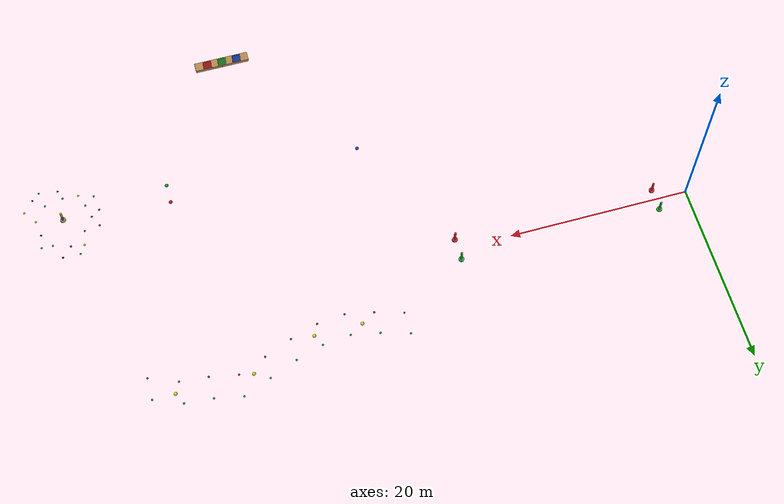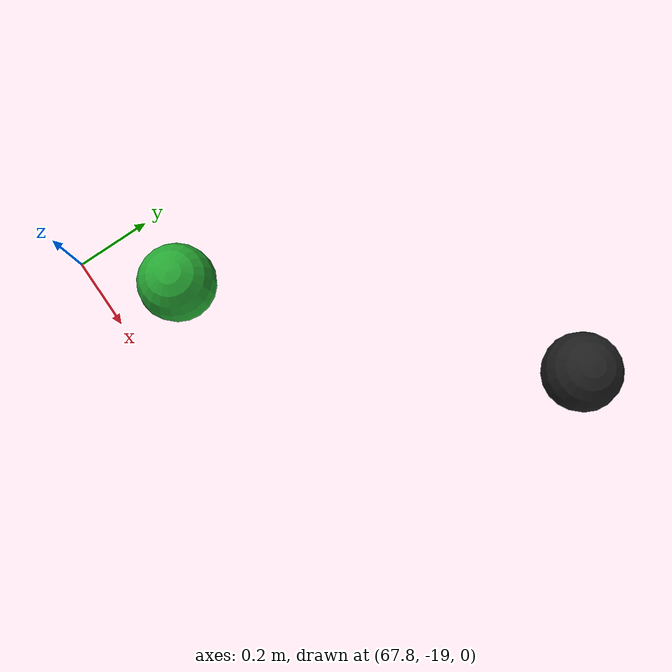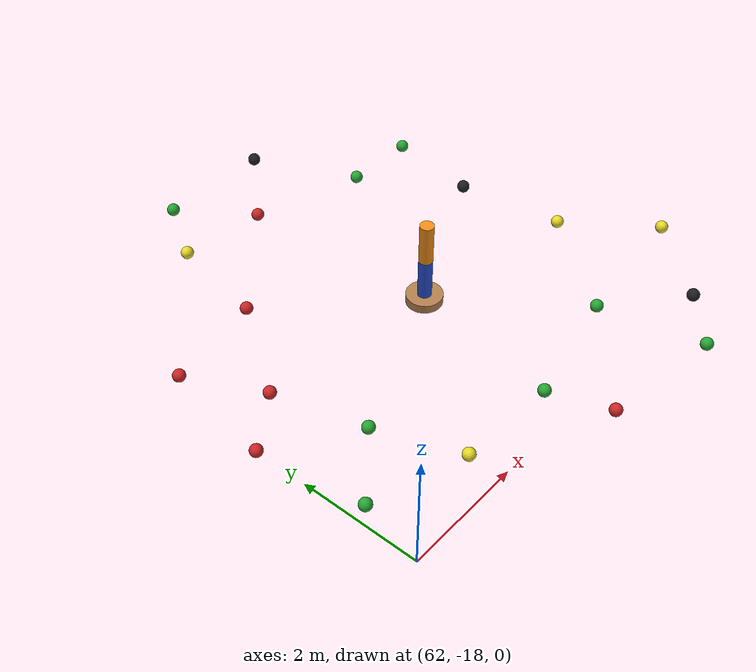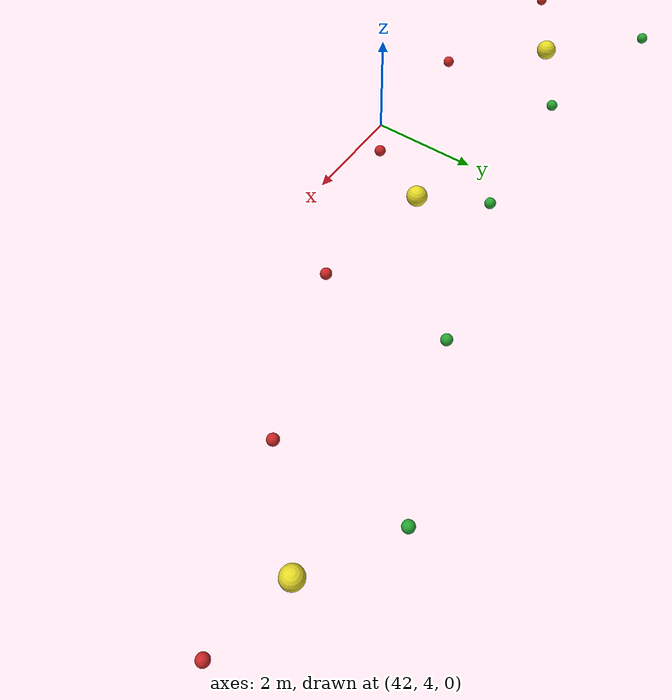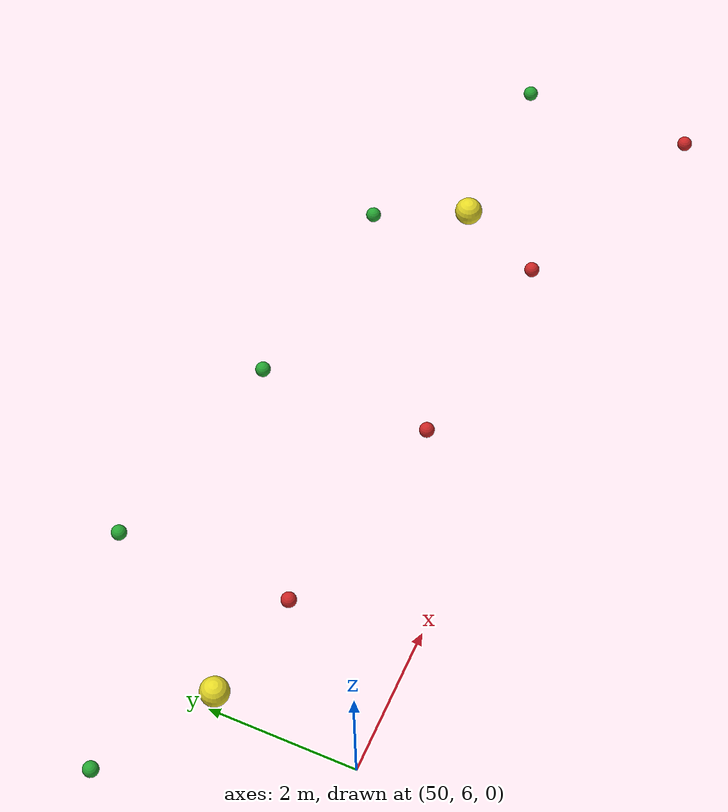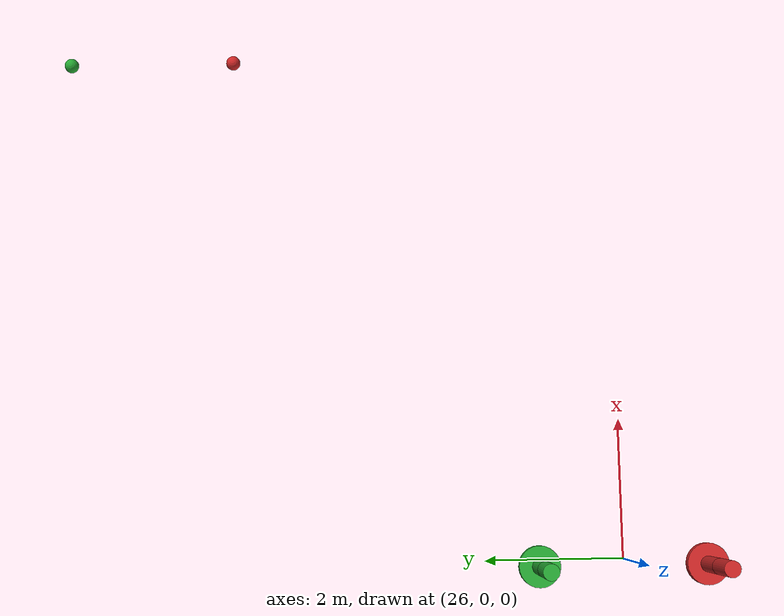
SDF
<sdf version="1.6">
 <world name="lake_challenges">
  <physics name="default_physics" default="1" type="ode">
   <max_step_size>0.002</max_step_size>
   <real_time_factor>1</real_time_factor>
   <real_time_update_rate>500</real_time_update_rate>
   <ode>
    <solver>
     <type>quick</type>
     <iters>50</iters>
     <sor>0.5</sor>
     <use_dynamic_moi_rescaling>0</use_dynamic_moi_rescaling>
    </solver>
    <constraints>
     <cfm>0</cfm>
     <erp>0.2</erp>
     <contact_max_correcting_vel>100</contact_max_correcting_vel>
     <contact_surface_layer>0.001</contact_surface_layer>
    </constraints>
   </ode>
  </physics>
  <scene>
   <ambient>0.01 0.01 0.01 1</ambient>
   <sky><clouds><speed>12</speed></clouds></sky>
   <shadows>1</shadows>
   <background>0.7 0.7 0.7 1</background>
  </scene>
  <spherical_coordinates>
   <latitude_deg>47.6279</latitude_deg>
   <longitude_deg>9.33455</longitude_deg>
   <surface_model>EARTH_WGS84</surface_model>
   <elevation>0</elevation>
   <heading_deg>0</heading_deg>
  </spherical_coordinates>
  <light name="sun1" type="directional">
   <pose>50 0 150 0 -0 0</pose>
   <diffuse>1 1 1 1</diffuse>
   <specular>0.1 0.1 0.1 1</specular>
   <direction>0.3 0.3 -1</direction>
  </light>
  <light name="sun" type="directional">
   <pose>0 0 10 0 -0 0</pose>
   <diffuse>0.8 0.8 0.8 1</diffuse>
   <specular>0.1 0.1 0.1 1</specular>
   <attenuation>
    <range>1000</range>
    <constant>0.9</constant>
    <linear>0.01</linear>
    <quadratic>0.001</quadratic>
   </attenuation>
   <direction>-0.5 0.5 -1</direction>
  </light>
  <model name="world_ned">
   <static>1</static>
   <link name="world_ned">
    <gravity>0</gravity>
    <pose>0 0 0 -3.14159 -0 1.5708</pose>
    <visual name="N_visual">
     <pose>0.25 0 0 1.5708 -0 1.5708</pose>
     <geometry><cylinder><radius>0.01</radius><length>0.5</length></cylinder></geometry>
     <material>
      <script><uri>file://media/materials/scripts/gazebo.material</uri><name>Gazebo/Red</name></script>
     </material>
    </visual>
    <visual name="E_visual">
     <pose>0 0.25 0 1.5708 -0 0</pose>
     <geometry><cylinder><radius>0.01</radius><length>0.5</length></cylinder></geometry>
     <material>
      <script><uri>file://media/materials/scripts/gazebo.material</uri><name>Gazebo/Green</name></script>
     </material>
    </visual>
    <visual name="D_visual">
     <pose>0 0 0.25 0 -0 0</pose>
     <geometry><cylinder><radius>0.01</radius><length>0.5</length></cylinder></geometry>
     <material>
      <script><uri>file://media/materials/scripts/gazebo.material</uri><name>Gazebo/Blue</name></script>
     </material>
    </visual>
   </link>
  </model>
  <gravity>0 0 -9.8</gravity>
  <magnetic_field>6e-06 2.3e-05 -4.2e-05</magnetic_field>
  <atmosphere type="adiabatic"/>
  <model name="manPole1">
   <link name="basepole_link">
    <inertial>
     <mass>300</mass>
     <inertia><ixx>3</ixx><ixy>0</ixy><ixz>0</ixz><iyy>3</iyy><iyz>0</iyz><izz>3</izz></inertia>
    </inertial>
    <collision name="basepole_link_collision">
     <geometry><cylinder><length>0.15</length><radius>0.3</radius></cylinder></geometry>
    </collision>
    <collision name="basepole_link_fixed_joint_lump__firstpole_link_collision_1">
     <pose>0 0 0.425 0 -0 0</pose>
     <geometry><cylinder><length>0.7</length><radius>0.115</radius></cylinder></geometry>
    </collision>
    <collision name="basepole_link_fixed_joint_lump__secondpole_link_collision_2">
     <pose>0 0 1.125 0 -0 0</pose>
     <geometry><cylinder><length>0.7</length><radius>0.115</radius></cylinder></geometry>
    </collision>
    <visual name="basepole_link_visual">
     <geometry><cylinder><length>0.15</length><radius>0.3</radius></cylinder></geometry>
     <material>
      <script><name>Gazebo/Red</name><uri>file://media/materials/scripts/gazebo.material</uri></script>
     </material>
    </visual>
    <visual name="basepole_link_fixed_joint_lump__firstpole_link_visual_1">
     <pose>0 0 0.425 0 -0 0</pose>
     <geometry><cylinder><length>0.7</length><radius>0.115</radius></cylinder></geometry>
     <material>
      <script><name>Gazebo/Red</name><uri>file://media/materials/scripts/gazebo.material</uri></script>
     </material>
    </visual>
    <visual name="basepole_link_fixed_joint_lump__secondpole_link_visual_2">
     <pose>0 0 1.125 0 -0 0</pose>
     <geometry><cylinder><length>0.7</length><radius>0.115</radius></cylinder></geometry>
     <material>
      <script><name>Gazebo/Red</name><uri>file://media/materials/scripts/gazebo.material</uri></script>
     </material>
    </visual>
    <gravity>0</gravity>
   </link>
   <pose>3.48 -1.21 0 0 -0 0</pose>
  </model>
  <model name="manPole3">
   <link name="basepole_link">
    <inertial>
     <mass>300</mass>
     <inertia><ixx>3</ixx><ixy>0</ixy><ixz>0</ixz><iyy>3</iyy><iyz>0</iyz><izz>3</izz></inertia>
    </inertial>
    <collision name="basepole_link_collision">
     <geometry><cylinder><length>0.15</length><radius>0.3</radius></cylinder></geometry>
    </collision>
    <collision name="basepole_link_fixed_joint_lump__firstpole_link_collision_1">
     <pose>0 0 0.425 0 -0 0</pose>
     <geometry><cylinder><length>0.7</length><radius>0.115</radius></cylinder></geometry>
    </collision>
    <collision name="basepole_link_fixed_joint_lump__secondpole_link_collision_2">
     <pose>0 0 1.125 0 -0 0</pose>
     <geometry><cylinder><length>0.7</length><radius>0.115</radius></cylinder></geometry>
    </collision>
    <visual name="basepole_link_visual">
     <geometry><cylinder><length>0.15</length><radius>0.3</radius></cylinder></geometry>
     <material>
      <script><name>Gazebo/Red</name><uri>file://media/materials/scripts/gazebo.material</uri></script>
     </material>
    </visual>
    <visual name="basepole_link_fixed_joint_lump__firstpole_link_visual_1">
     <pose>0 0 0.425 0 -0 0</pose>
     <geometry><cylinder><length>0.7</length><radius>0.115</radius></cylinder></geometry>
     <material>
      <script><name>Gazebo/Red</name><uri>file://media/materials/scripts/gazebo.material</uri></script>
     </material>
    </visual>
    <visual name="basepole_link_fixed_joint_lump__secondpole_link_visual_2">
     <pose>0 0 1.125 0 -0 0</pose>
     <geometry><cylinder><length>0.7</length><radius>0.115</radius></cylinder></geometry>
     <material>
      <script><name>Gazebo/Red</name><uri>file://media/materials/scripts/gazebo.material</uri></script>
     </material>
    </visual>
    <gravity>0</gravity>
   </link>
   <pose>25.908 -1.21 0 0 -0 0</pose>
  </model>
  <model name="manPole0">
   <link name="basepole_link">
    <inertial>
     <mass>300</mass>
     <inertia><ixx>3</ixx><ixy>0</ixy><ixz>0</ixz><iyy>3</iyy><iyz>0</iyz><izz>3</izz></inertia>
    </inertial>
    <collision name="basepole_link_collision">
     <geometry><cylinder><length>0.15</length><radius>0.3</radius></cylinder></geometry>
    </collision>
    <collision name="basepole_link_fixed_joint_lump__firstpole_link_collision_1">
     <pose>0 0 0.425 0 -0 0</pose>
     <geometry><cylinder><length>0.7</length><radius>0.115</radius></cylinder></geometry>
    </collision>
    <collision name="basepole_link_fixed_joint_lump__secondpole_link_collision_2">
     <pose>0 0 1.125 0 -0 0</pose>
     <geometry><cylinder><length>0.7</length><radius>0.115</radius></cylinder></geometry>
    </collision>
    <visual name="basepole_link_visual">
     <geometry><cylinder><length>0.15</length><radius>0.3</radius></cylinder></geometry>
     <material>
      <script><name>Gazebo/Green</name><uri>file://media/materials/scripts/gazebo.material</uri></script>
     </material>
    </visual>
    <visual name="basepole_link_fixed_joint_lump__firstpole_link_visual_1">
     <pose>0 0 0.425 0 -0 0</pose>
     <geometry><cylinder><length>0.7</length><radius>0.115</radius></cylinder></geometry>
     <material>
      <script><name>Gazebo/Green</name><uri>file://media/materials/scripts/gazebo.material</uri></script>
     </material>
    </visual>
    <visual name="basepole_link_fixed_joint_lump__secondpole_link_visual_2">
     <pose>0 0 1.125 0 -0 0</pose>
     <geometry><cylinder><length>0.7</length><radius>0.115</radius></cylinder></geometry>
     <material>
      <script><name>Gazebo/Green</name><uri>file://media/materials/scripts/gazebo.material</uri></script>
     </material>
    </visual>
    <gravity>0</gravity>
   </link>
   <pose>3.48 1.21 0 0 -0 0</pose>
  </model>
  <model name="manPole2">
   <link name="basepole_link">
    <inertial>
     <mass>300</mass>
     <inertia><ixx>3</ixx><ixy>0</ixy><ixz>0</ixz><iyy>3</iyy><iyz>0</iyz><izz>3</izz></inertia>
    </inertial>
    <collision name="basepole_link_collision">
     <geometry><cylinder><length>0.15</length><radius>0.3</radius></cylinder></geometry>
    </collision>
    <collision name="basepole_link_fixed_joint_lump__firstpole_link_collision_1">
     <pose>0 0 0.425 0 -0 0</pose>
     <geometry><cylinder><length>0.7</length><radius>0.115</radius></cylinder></geometry>
    </collision>
    <collision name="basepole_link_fixed_joint_lump__secondpole_link_collision_2">
     <pose>0 0 1.125 0 -0 0</pose>
     <geometry><cylinder><length>0.7</length><radius>0.115</radius></cylinder></geometry>
    </collision>
    <visual name="basepole_link_visual">
     <geometry><cylinder><length>0.15</length><radius>0.3</radius></cylinder></geometry>
     <material>
      <script><name>Gazebo/Green</name><uri>file://media/materials/scripts/gazebo.material</uri></script>
     </material>
    </visual>
    <visual name="basepole_link_fixed_joint_lump__firstpole_link_visual_1">
     <pose>0 0 0.425 0 -0 0</pose>
     <geometry><cylinder><length>0.7</length><radius>0.115</radius></cylinder></geometry>
     <material>
      <script><name>Gazebo/Green</name><uri>file://media/materials/scripts/gazebo.material</uri></script>
     </material>
    </visual>
    <visual name="basepole_link_fixed_joint_lump__secondpole_link_visual_2">
     <pose>0 0 1.125 0 -0 0</pose>
     <geometry><cylinder><length>0.7</length><radius>0.115</radius></cylinder></geometry>
     <material>
      <script><name>Gazebo/Green</name><uri>file://media/materials/scripts/gazebo.material</uri></script>
     </material>
    </visual>
    <gravity>0</gravity>
   </link>
   <pose>25.908 1.21 0 0 -0 0</pose>
  </model>
  <model name="Red_A0_0">
   <link name="reda0_link">
    <inertial>
     <mass>0.105</mass>
     <inertia><ixx>1</ixx><ixy>0</ixy><ixz>0</ixz><iyy>1</iyy><iyz>0</iyz><izz>1</izz></inertia>
    </inertial>
    <collision name="reda0_link_collision">
     <geometry><sphere><radius>0.105</radius></sphere></geometry>
    </collision>
    <visual name="reda0_link_visual">
     <geometry><sphere><radius>0.105</radius></sphere></geometry>
     <material>
      <script><name>Gazebo/Red</name><uri>file://media/materials/scripts/gazebo.material</uri></script>
     </material>
    </visual>
    <gravity>0</gravity>
   </link>
   <pose>33.48 5.602 0 0 -0 0</pose>
  </model>
  <model name="green_A0_0">
   <link name="greena0_link">
    <inertial>
     <mass>0.105</mass>
     <inertia><ixx>1</ixx><ixy>0</ixy><ixz>0</ixz><iyy>1</iyy><iyz>0</iyz><izz>1</izz></inertia>
    </inertial>
    <collision name="greena0_link_collision">
     <geometry><sphere><radius>0.105</radius></sphere></geometry>
    </collision>
    <visual name="greena0_link_visual">
     <geometry><sphere><radius>0.105</radius></sphere></geometry>
     <material>
      <script><name>Gazebo/Green</name><uri>file://media/materials/scripts/gazebo.material</uri></script>
     </material>
    </visual>
    <gravity>0</gravity>
   </link>
   <pose>33.48 8.042 0 0 -0 0</pose>
  </model>
  <model name="Red_A0_3">
   <link name="reda0_link">
    <inertial>
     <mass>0.105</mass>
     <inertia><ixx>1</ixx><ixy>0</ixy><ixz>0</ixz><iyy>1</iyy><iyz>0</iyz><izz>1</izz></inertia>
    </inertial>
    <collision name="reda0_link_collision">
     <geometry><sphere><radius>0.105</radius></sphere></geometry>
    </collision>
    <visual name="reda0_link_visual">
     <geometry><sphere><radius>0.105</radius></sphere></geometry>
     <material>
      <script><name>Gazebo/Red</name><uri>file://media/materials/scripts/gazebo.material</uri></script>
     </material>
    </visual>
    <gravity>0</gravity>
   </link>
   <pose>42.62 4.382 0 0 -0 0</pose>
  </model>
  <model name="green_A0_1">
   <link name="greena0_link">
    <inertial>
     <mass>0.105</mass>
     <inertia><ixx>1</ixx><ixy>0</ixy><ixz>0</ixz><iyy>1</iyy><iyz>0</iyz><izz>1</izz></inertia>
    </inertial>
    <collision name="greena0_link_collision">
     <geometry><sphere><radius>0.105</radius></sphere></geometry>
    </collision>
    <visual name="greena0_link_visual">
     <geometry><sphere><radius>0.105</radius></sphere></geometry>
     <material>
      <script><name>Gazebo/Green</name><uri>file://media/materials/scripts/gazebo.material</uri></script>
     </material>
    </visual>
    <gravity>0</gravity>
   </link>
   <pose>36.52 7.132 0 0 -0 0</pose>
  </model>
  <model name="Red_A0_1">
   <link name="reda0_link">
    <inertial>
     <mass>0.105</mass>
     <inertia><ixx>1</ixx><ixy>0</ixy><ixz>0</ixz><iyy>1</iyy><iyz>0</iyz><izz>1</izz></inertia>
    </inertial>
    <collision name="reda0_link_collision">
     <geometry><sphere><radius>0.105</radius></sphere></geometry>
    </collision>
    <visual name="reda0_link_visual">
     <geometry><sphere><radius>0.105</radius></sphere></geometry>
     <material>
      <script><name>Gazebo/Red</name><uri>file://media/materials/scripts/gazebo.material</uri></script>
     </material>
    </visual>
    <gravity>0</gravity>
   </link>
   <pose>36.52 4.692 0 0 -0 0</pose>
  </model>
  <model name="green_A0_2">
   <link name="greena0_link">
    <inertial>
     <mass>0.105</mass>
     <inertia><ixx>1</ixx><ixy>0</ixy><ixz>0</ixz><iyy>1</iyy><iyz>0</iyz><izz>1</izz></inertia>
    </inertial>
    <collision name="greena0_link_collision">
     <geometry><sphere><radius>0.105</radius></sphere></geometry>
    </collision>
    <visual name="greena0_link_visual">
     <geometry><sphere><radius>0.105</radius></sphere></geometry>
     <material>
      <script><name>Gazebo/Green</name><uri>file://media/materials/scripts/gazebo.material</uri></script>
     </material>
    </visual>
    <gravity>0</gravity>
   </link>
   <pose>39.57 6.522 0 0 -0 0</pose>
  </model>
  <model name="Red_A0_4">
   <link name="reda0_link">
    <inertial>
     <mass>0.105</mass>
     <inertia><ixx>1</ixx><ixy>0</ixy><ixz>0</ixz><iyy>1</iyy><iyz>0</iyz><izz>1</izz></inertia>
    </inertial>
    <collision name="reda0_link_collision">
     <geometry><sphere><radius>0.105</radius></sphere></geometry>
    </collision>
    <visual name="reda0_link_visual">
     <geometry><sphere><radius>0.105</radius></sphere></geometry>
     <material>
      <script><name>Gazebo/Red</name><uri>file://media/materials/scripts/gazebo.material</uri></script>
     </material>
    </visual>
    <gravity>0</gravity>
   </link>
   <pose>45.67 5.302 0 0 -0 0</pose>
  </model>
  <model name="Red_A0_2">
   <link name="reda0_link">
    <inertial>
     <mass>0.105</mass>
     <inertia><ixx>1</ixx><ixy>0</ixy><ixz>0</ixz><iyy>1</iyy><iyz>0</iyz><izz>1</izz></inertia>
    </inertial>
    <collision name="reda0_link_collision">
     <geometry><sphere><radius>0.105</radius></sphere></geometry>
    </collision>
    <visual name="reda0_link_visual">
     <geometry><sphere><radius>0.105</radius></sphere></geometry>
     <material>
      <script><name>Gazebo/Red</name><uri>file://media/materials/scripts/gazebo.material</uri></script>
     </material>
    </visual>
    <gravity>0</gravity>
   </link>
   <pose>39.57 4.082 0 0 -0 0</pose>
  </model>
  <model name="Red_A0_5">
   <link name="reda0_link">
    <inertial>
     <mass>0.105</mass>
     <inertia><ixx>1</ixx><ixy>0</ixy><ixz>0</ixz><iyy>1</iyy><iyz>0</iyz><izz>1</izz></inertia>
    </inertial>
    <collision name="reda0_link_collision">
     <geometry><sphere><radius>0.105</radius></sphere></geometry>
    </collision>
    <visual name="reda0_link_visual">
     <geometry><sphere><radius>0.105</radius></sphere></geometry>
     <material>
      <script><name>Gazebo/Red</name><uri>file://media/materials/scripts/gazebo.material</uri></script>
     </material>
    </visual>
    <gravity>0</gravity>
   </link>
   <pose>48.72 6.522 0 0 -0 0</pose>
  </model>
  <model name="green_A0_6">
   <link name="greena0_link">
    <inertial>
     <mass>0.105</mass>
     <inertia><ixx>1</ixx><ixy>0</ixy><ixz>0</ixz><iyy>1</iyy><iyz>0</iyz><izz>1</izz></inertia>
    </inertial>
    <collision name="greena0_link_collision">
     <geometry><sphere><radius>0.105</radius></sphere></geometry>
    </collision>
    <visual name="greena0_link_visual">
     <geometry><sphere><radius>0.105</radius></sphere></geometry>
     <material>
      <script><name>Gazebo/Green</name><uri>file://media/materials/scripts/gazebo.material</uri></script>
     </material>
    </visual>
    <gravity>0</gravity>
   </link>
   <pose>51.76 10.182 0 0 -0 0</pose>
  </model>
  <model name="green_A0_7">
   <link name="greena0_link">
    <inertial>
     <mass>0.105</mass>
     <inertia><ixx>1</ixx><ixy>0</ixy><ixz>0</ixz><iyy>1</iyy><iyz>0</iyz><izz>1</izz></inertia>
    </inertial>
    <collision name="greena0_link_collision">
     <geometry><sphere><radius>0.105</radius></sphere></geometry>
    </collision>
    <visual name="greena0_link_visual">
     <geometry><sphere><radius>0.105</radius></sphere></geometry>
     <material>
      <script><name>Gazebo/Green</name><uri>file://media/materials/scripts/gazebo.material</uri></script>
     </material>
    </visual>
    <gravity>0</gravity>
   </link>
   <pose>54.81 9.572 0 0 -0 0</pose>
  </model>
  <model name="Red_A0_6">
   <link name="reda0_link">
    <inertial>
     <mass>0.105</mass>
     <inertia><ixx>1</ixx><ixy>0</ixy><ixz>0</ixz><iyy>1</iyy><iyz>0</iyz><izz>1</izz></inertia>
    </inertial>
    <collision name="reda0_link_collision">
     <geometry><sphere><radius>0.105</radius></sphere></geometry>
    </collision>
    <visual name="reda0_link_visual">
     <geometry><sphere><radius>0.105</radius></sphere></geometry>
     <material>
      <script><name>Gazebo/Red</name><uri>file://media/materials/scripts/gazebo.material</uri></script>
     </material>
    </visual>
    <gravity>0</gravity>
   </link>
   <pose>51.76 7.742 0 0 -0 0</pose>
  </model>
  <model name="Red_A0_7">
   <link name="reda0_link">
    <inertial>
     <mass>0.105</mass>
     <inertia><ixx>1</ixx><ixy>0</ixy><ixz>0</ixz><iyy>1</iyy><iyz>0</iyz><izz>1</izz></inertia>
    </inertial>
    <collision name="reda0_link_collision">
     <geometry><sphere><radius>0.105</radius></sphere></geometry>
    </collision>
    <visual name="reda0_link_visual">
     <geometry><sphere><radius>0.105</radius></sphere></geometry>
     <material>
      <script><name>Gazebo/Red</name><uri>file://media/materials/scripts/gazebo.material</uri></script>
     </material>
    </visual>
    <gravity>0</gravity>
   </link>
   <pose>54.81 7.132 0 0 -0 0</pose>
  </model>
  <model name="green_A0_8">
   <link name="greena0_link">
    <inertial>
     <mass>0.105</mass>
     <inertia><ixx>1</ixx><ixy>0</ixy><ixz>0</ixz><iyy>1</iyy><iyz>0</iyz><izz>1</izz></inertia>
    </inertial>
    <collision name="greena0_link_collision">
     <geometry><sphere><radius>0.105</radius></sphere></geometry>
    </collision>
    <visual name="greena0_link_visual">
     <geometry><sphere><radius>0.105</radius></sphere></geometry>
     <material>
      <script><name>Gazebo/Green</name><uri>file://media/materials/scripts/gazebo.material</uri></script>
     </material>
    </visual>
    <gravity>0</gravity>
   </link>
   <pose>57.86 9.272 0 0 -0 0</pose>
  </model>
  <model name="green_A0_3">
   <link name="greena0_link">
    <inertial>
     <mass>0.105</mass>
     <inertia><ixx>1</ixx><ixy>0</ixy><ixz>0</ixz><iyy>1</iyy><iyz>0</iyz><izz>1</izz></inertia>
    </inertial>
    <collision name="greena0_link_collision">
     <geometry><sphere><radius>0.105</radius></sphere></geometry>
    </collision>
    <visual name="greena0_link_visual">
     <geometry><sphere><radius>0.105</radius></sphere></geometry>
     <material>
      <script><name>Gazebo/Green</name><uri>file://media/materials/scripts/gazebo.material</uri></script>
     </material>
    </visual>
    <gravity>0</gravity>
   </link>
   <pose>42.62 6.822 0 0 -0 0</pose>
  </model>
  <model name="green_A0_9">
   <link name="greena0_link">
    <inertial>
     <mass>0.105</mass>
     <inertia><ixx>1</ixx><ixy>0</ixy><ixz>0</ixz><iyy>1</iyy><iyz>0</iyz><izz>1</izz></inertia>
    </inertial>
    <collision name="greena0_link_collision">
     <geometry><sphere><radius>0.105</radius></sphere></geometry>
    </collision>
    <visual name="greena0_link_visual">
     <geometry><sphere><radius>0.105</radius></sphere></geometry>
     <material>
      <script><name>Gazebo/Green</name><uri>file://media/materials/scripts/gazebo.material</uri></script>
     </material>
    </visual>
    <gravity>0</gravity>
   </link>
   <pose>60.91 8.042 0 0 -0 0</pose>
  </model>
  <model name="Red_A0_9">
   <link name="reda0_link">
    <inertial>
     <mass>0.105</mass>
     <inertia><ixx>1</ixx><ixy>0</ixy><ixz>0</ixz><iyy>1</iyy><iyz>0</iyz><izz>1</izz></inertia>
    </inertial>
    <collision name="reda0_link_collision">
     <geometry><sphere><radius>0.105</radius></sphere></geometry>
    </collision>
    <visual name="reda0_link_visual">
     <geometry><sphere><radius>0.105</radius></sphere></geometry>
     <material>
      <script><name>Gazebo/Red</name><uri>file://media/materials/scripts/gazebo.material</uri></script>
     </material>
    </visual>
    <gravity>0</gravity>
   </link>
   <pose>60.91 5.602 0 0 -0 0</pose>
  </model>
  <model name="yellow_A0_3">
   <link name="buoy_link">
    <inertial>
     <mass>0.105</mass>
     <inertia><ixx>1</ixx><ixy>0</ixy><ixz>0</ixz><iyy>1</iyy><iyz>0</iyz><izz>1</izz></inertia>
    </inertial>
    <collision name="buoy_link_collision"><geometry><sphere><radius>0.195</radius></sphere></geometry></collision>
    <visual name="buoy_link_visual">
     <geometry><sphere><radius>0.195</radius></sphere></geometry>
     <material>
      <script><name>Gazebo/Yellow</name><uri>file://media/materials/scripts/gazebo.material</uri></script>
     </material>
    </visual>
    <gravity>0</gravity>
   </link>
   <pose>58.47 8.042 0 0 -0 0</pose>
  </model>
  <model name="Red_A0_8">
   <link name="reda0_link">
    <inertial>
     <mass>0.105</mass>
     <inertia><ixx>1</ixx><ixy>0</ixy><ixz>0</ixz><iyy>1</iyy><iyz>0</iyz><izz>1</izz></inertia>
    </inertial>
    <collision name="reda0_link_collision">
     <geometry><sphere><radius>0.105</radius></sphere></geometry>
    </collision>
    <visual name="reda0_link_visual">
     <geometry><sphere><radius>0.105</radius></sphere></geometry>
     <material>
      <script><name>Gazebo/Red</name><uri>file://media/materials/scripts/gazebo.material</uri></script>
     </material>
    </visual>
    <gravity>0</gravity>
   </link>
   <pose>57.86 6.822 0 0 -0 0</pose>
  </model>
  <model name="green_A0_4">
   <link name="greena0_link">
    <inertial>
     <mass>0.105</mass>
     <inertia><ixx>1</ixx><ixy>0</ixy><ixz>0</ixz><iyy>1</iyy><iyz>0</iyz><izz>1</izz></inertia>
    </inertial>
    <collision name="greena0_link_collision">
     <geometry><sphere><radius>0.105</radius></sphere></geometry>
    </collision>
    <visual name="greena0_link_visual">
     <geometry><sphere><radius>0.105</radius></sphere></geometry>
     <material>
      <script><name>Gazebo/Green</name><uri>file://media/materials/scripts/gazebo.material</uri></script>
     </material>
    </visual>
    <gravity>0</gravity>
   </link>
   <pose>45.67 7.742 0 0 -0 0</pose>
  </model>
  <model name="yellow_A0_0">
   <link name="buoy_link">
    <inertial>
     <mass>0.105</mass>
     <inertia><ixx>1</ixx><ixy>0</ixy><ixz>0</ixz><iyy>1</iyy><iyz>0</iyz><izz>1</izz></inertia>
    </inertial>
    <collision name="buoy_link_collision"><geometry><sphere><radius>0.195</radius></sphere></geometry></collision>
    <visual name="buoy_link_visual">
     <geometry><sphere><radius>0.195</radius></sphere></geometry>
     <material>
      <script><name>Gazebo/Yellow</name><uri>file://media/materials/scripts/gazebo.material</uri></script>
     </material>
    </visual>
    <gravity>0</gravity>
   </link>
   <pose>38.05 5.602 0 0 -0 0</pose>
  </model>
  <model name="green_A0_5">
   <link name="greena0_link">
    <inertial>
     <mass>0.105</mass>
     <inertia><ixx>1</ixx><ixy>0</ixy><ixz>0</ixz><iyy>1</iyy><iyz>0</iyz><izz>1</izz></inertia>
    </inertial>
    <collision name="greena0_link_collision">
     <geometry><sphere><radius>0.105</radius></sphere></geometry>
    </collision>
    <visual name="greena0_link_visual">
     <geometry><sphere><radius>0.105</radius></sphere></geometry>
     <material>
      <script><name>Gazebo/Green</name><uri>file://media/materials/scripts/gazebo.material</uri></script>
     </material>
    </visual>
    <gravity>0</gravity>
   </link>
   <pose>48.72 8.962 0 0 -0 0</pose>
  </model>
  <model name="yellow_A0_2">
   <link name="buoy_link">
    <inertial>
     <mass>0.105</mass>
     <inertia><ixx>1</ixx><ixy>0</ixy><ixz>0</ixz><iyy>1</iyy><iyz>0</iyz><izz>1</izz></inertia>
    </inertial>
    <collision name="buoy_link_collision"><geometry><sphere><radius>0.195</radius></sphere></geometry></collision>
    <visual name="buoy_link_visual">
     <geometry><sphere><radius>0.195</radius></sphere></geometry>
     <material>
      <script><name>Gazebo/Yellow</name><uri>file://media/materials/scripts/gazebo.material</uri></script>
     </material>
    </visual>
    <gravity>0</gravity>
   </link>
   <pose>50.24 8.042 0 0 -0 0</pose>
  </model>
  <model name="yellow_A0_1">
   <link name="buoy_link">
    <inertial>
     <mass>0.105</mass>
     <inertia><ixx>1</ixx><ixy>0</ixy><ixz>0</ixz><iyy>1</iyy><iyz>0</iyz><izz>1</izz></inertia>
    </inertial>
    <collision name="buoy_link_collision"><geometry><sphere><radius>0.195</radius></sphere></geometry></collision>
    <visual name="buoy_link_visual">
     <geometry><sphere><radius>0.195</radius></sphere></geometry>
     <material>
      <script><name>Gazebo/Yellow</name><uri>file://media/materials/scripts/gazebo.material</uri></script>
     </material>
    </visual>
    <gravity>0</gravity>
   </link>
   <pose>43.23 5.612 0 0 -0 0</pose>
  </model>
  <model name="Dock_model">
   <link name="dock1_link">
    <inertial>
     <mass>500</mass>
     <inertia><ixx>5</ixx><ixy>0</ixy><ixz>0</ixz><iyy>5</iyy><iyz>0</iyz><izz>5</izz></inertia>
    </inertial>
    <collision name="dock1_link_collision">
     <pose>1.524 0 0.19 0 -0 0</pose>
     <geometry><box><size>3.048 1.016 0.381</size></box></geometry>
    </collision>
    <collision name="dock1_link_fixed_joint_lump__dock2_link_collision_1">
     <pose>-1.524 0 0.19 0 -0 0</pose>
     <geometry><box><size>3.048 1.016 0.381</size></box></geometry>
    </collision>
    <collision name="dock1_link_fixed_joint_lump__image0_link_collision_2">
     <pose>0 -0.458 1.0266 0 -0 0</pose>
     <geometry><box><size>0.9144 0.1 1.2912</size></box></geometry>
    </collision>
    <collision name="dock1_link_fixed_joint_lump__image1_link_collision_3">
     <pose>-1.6764 -0.458 1.0266 0 -0 0</pose>
     <geometry><box><size>0.9144 0.1 1.2912</size></box></geometry>
    </collision>
    <collision name="dock1_link_fixed_joint_lump__image2_link_collision_4">
     <pose>1.6764 -0.458 1.0266 0 -0 0</pose>
     <geometry><box><size>0.9144 0.1 1.2912</size></box></geometry>
    </collision>
    <visual name="dock1_link_visual">
     <pose>1.524 0 0.19 0 -0 0</pose>
     <geometry><box><size>3.048 1.016 0.381</size></box></geometry>
     <material>
      <script><name>Gazebo/Wood</name><uri>file://media/materials/scripts/gazebo.material</uri></script>
     </material>
    </visual>
    <visual name="dock1_link_fixed_joint_lump__dock2_link_visual_1">
     <pose>-1.524 0 0.19 0 -0 0</pose>
     <geometry><box><size>3.048 1.016 0.381</size></box></geometry>
     <material>
      <script><name>Gazebo/Wood</name><uri>file://media/materials/scripts/gazebo.material</uri></script>
     </material>
    </visual>
    <visual name="dock1_link_fixed_joint_lump__image0_link_visual_2">
     <pose>0 -0.458 1.0266 0 -0 0</pose>
     <geometry><box><size>0.9144 0.1 1.2912</size></box></geometry>
     <material>
      <script><name>Gazebo/Green</name><uri>file://media/materials/scripts/gazebo.material</uri></script>
     </material>
    </visual>
    <visual name="dock1_link_fixed_joint_lump__image1_link_visual_3">
     <pose>-1.6764 -0.458 1.0266 0 -0 0</pose>
     <geometry><box><size>0.9144 0.1 1.2912</size></box></geometry>
     <material>
      <script><name>Gazebo/Red</name><uri>file://media/materials/scripts/gazebo.material</uri></script>
     </material>
    </visual>
    <visual name="dock1_link_fixed_joint_lump__image2_link_visual_4">
     <pose>1.6764 -0.458 1.0266 0 -0 0</pose>
     <geometry><box><size>0.9144 0.1 1.2912</size></box></geometry>
     <material>
      <script><name>Gazebo/Blue</name><uri>file://media/materials/scripts/gazebo.material</uri></script>
     </material>
    </visual>
    <gravity>0</gravity>
   </link>
   <pose>45 -30 0 0 -0 3.14159</pose>
  </model>
  <model name="Blue_A2_0">
   <link name="base_link">
    <inertial>
     <mass>0.105</mass>
     <inertia><ixx>1</ixx><ixy>0</ixy><ixz>0</ixz><iyy>1</iyy><iyz>0</iyz><izz>1</izz></inertia>
    </inertial>
    <collision name="base_link_collision"><geometry><sphere><radius>0.195</radius></sphere></geometry></collision>
    <visual name="base_link_visual">
     <geometry><sphere><radius>0.195</radius></sphere></geometry>
     <material>
      <script><name>Gazebo/Blue</name><uri>file://media/materials/scripts/gazebo.material</uri></script>
     </material>
    </visual>
    <gravity>0</gravity>
   </link>
   <pose>33.048 -15 0 0 -0 0</pose>
  </model>
  <model name="Red_A2_0">
   <link name="base_link">
    <inertial>
     <mass>0.105</mass>
     <inertia><ixx>1</ixx><ixy>0</ixy><ixz>0</ixz><iyy>1</iyy><iyz>0</iyz><izz>1</izz></inertia>
    </inertial>
    <collision name="base_link_collision"><geometry><sphere><radius>0.195</radius></sphere></geometry></collision>
    <visual name="base_link_visual">
     <geometry><sphere><radius>0.195</radius></sphere></geometry>
     <material>
      <script><name>Gazebo/Red</name><uri>file://media/materials/scripts/gazebo.material</uri></script>
     </material>
    </visual>
    <gravity>0</gravity>
   </link>
   <pose>54.336 -13.934 0 0 -0 0</pose>
  </model>
  <model name="Green_A2_0">
   <link name="buoy_link">
    <inertial>
     <mass>0.105</mass>
     <inertia><ixx>1</ixx><ixy>0</ixy><ixz>0</ixz><iyy>1</iyy><iyz>0</iyz><izz>1</izz></inertia>
    </inertial>
    <collision name="buoy_link_collision"><geometry><sphere><radius>0.195</radius></sphere></geometry></collision>
    <visual name="buoy_link_visual">
     <geometry><sphere><radius>0.195</radius></sphere></geometry>
     <material>
      <script><name>Gazebo/Green</name><uri>file://media/materials/scripts/gazebo.material</uri></script>
     </material>
    </visual>
    <gravity>0</gravity>
   </link>
   <pose>54.336 -16.066 0 0 -0 0</pose>
  </model>
  <model name="buoy_A0_1">
   <link name="reda0_link">
    <inertial>
     <mass>0.105</mass>
     <inertia><ixx>1</ixx><ixy>0</ixy><ixz>0</ixz><iyy>1</iyy><iyz>0</iyz><izz>1</izz></inertia>
    </inertial>
    <collision name="reda0_link_collision">
     <geometry><sphere><radius>0.105</radius></sphere></geometry>
    </collision>
    <visual name="reda0_link_visual">
     <geometry><sphere><radius>0.105</radius></sphere></geometry>
     <material>
      <script><name>Gazebo/Red</name><uri>file://media/materials/scripts/gazebo.material</uri></script>
     </material>
    </visual>
    <gravity>0</gravity>
   </link>
   <pose>62.3 -13.2 0 0 -0 0</pose>
  </model>
  <model name="buoy_A0_5">
   <link name="reda0_link">
    <inertial>
     <mass>0.105</mass>
     <inertia><ixx>1</ixx><ixy>0</ixy><ixz>0</ixz><iyy>1</iyy><iyz>0</iyz><izz>1</izz></inertia>
    </inertial>
    <collision name="reda0_link_collision">
     <geometry><sphere><radius>0.105</radius></sphere></geometry>
    </collision>
    <visual name="reda0_link_visual">
     <geometry><sphere><radius>0.105</radius></sphere></geometry>
     <material>
      <script><name>Gazebo/Red</name><uri>file://media/materials/scripts/gazebo.material</uri></script>
     </material>
    </visual>
    <gravity>0</gravity>
   </link>
   <pose>65.75 -11.5 0 0 -0 0</pose>
  </model>
  <model name="Obs_pole">
   <link name="basepole_link">
    <inertial>
     <mass>300</mass>
     <inertia><ixx>3</ixx><ixy>0</ixy><ixz>0</ixz><iyy>3</iyy><iyz>0</iyz><izz>3</izz></inertia>
    </inertial>
    <collision name="basepole_link_collision">
     <geometry><cylinder><length>0.15</length><radius>0.3</radius></cylinder></geometry>
    </collision>
    <collision name="basepole_link_fixed_joint_lump__firstpole_link_collision_1">
     <pose>0 0 0.425 0 -0 0</pose>
     <geometry><cylinder><length>0.7</length><radius>0.115</radius></cylinder></geometry>
    </collision>
    <collision name="basepole_link_fixed_joint_lump__secondpole_link_collision_2">
     <pose>0 0 1.125 0 -0 0</pose>
     <geometry><cylinder><length>0.7</length><radius>0.115</radius></cylinder></geometry>
    </collision>
    <visual name="basepole_link_visual">
     <geometry><cylinder><length>0.15</length><radius>0.3</radius></cylinder></geometry>
     <material>
      <script><name>Gazebo/Wood</name><uri>file://media/materials/scripts/gazebo.material</uri></script>
     </material>
    </visual>
    <visual name="basepole_link_fixed_joint_lump__firstpole_link_visual_1">
     <pose>0 0 0.425 0 -0 0</pose>
     <geometry><cylinder><length>0.7</length><radius>0.115</radius></cylinder></geometry>
     <material>
      <script><name>Gazebo/Blue</name><uri>file://media/materials/scripts/gazebo.material</uri></script>
     </material>
    </visual>
    <visual name="basepole_link_fixed_joint_lump__secondpole_link_visual_2">
     <pose>0 0 1.125 0 -0 0</pose>
     <geometry><cylinder><length>0.7</length><radius>0.115</radius></cylinder></geometry>
     <material>
      <script><name>Gazebo/Orange</name><uri>file://media/materials/scripts/gazebo.material</uri></script>
     </material>
    </visual>
    <gravity>0</gravity>
   </link>
   <pose>66 -14.9 0 0 -0 0</pose>
  </model>
  <model name="buoy_A0_3">
   <link name="greena0_link">
    <inertial>
     <mass>0.105</mass>
     <inertia><ixx>1</ixx><ixy>0</ixy><ixz>0</ixz><iyy>1</iyy><iyz>0</iyz><izz>1</izz></inertia>
    </inertial>
    <collision name="greena0_link_collision">
     <geometry><sphere><radius>0.105</radius></sphere></geometry>
    </collision>
    <visual name="greena0_link_visual">
     <geometry><sphere><radius>0.105</radius></sphere></geometry>
     <material>
      <script><name>Gazebo/Black</name><uri>file://media/materials/scripts/gazebo.material</uri></script>
     </material>
    </visual>
    <gravity>0</gravity>
   </link>
   <pose>66.8 -10.4 0 0 -0 0</pose>
  </model>
  <model name="buoy_A0_7">
   <link name="greena0_link">
    <inertial>
     <mass>0.105</mass>
     <inertia><ixx>1</ixx><ixy>0</ixy><ixz>0</ixz><iyy>1</iyy><iyz>0</iyz><izz>1</izz></inertia>
    </inertial>
    <collision name="greena0_link_collision">
     <geometry><sphere><radius>0.105</radius></sphere></geometry>
    </collision>
    <visual name="greena0_link_visual">
     <geometry><sphere><radius>0.105</radius></sphere></geometry>
     <material>
      <script><name>Gazebo/Green</name><uri>file://media/materials/scripts/gazebo.material</uri></script>
     </material>
    </visual>
    <gravity>0</gravity>
   </link>
   <pose>67.6 -12.1 0 0 -0 0</pose>
  </model>
  <model name="buoy_A0_10">
   <link name="greena0_link">
    <inertial>
     <mass>0.105</mass>
     <inertia><ixx>1</ixx><ixy>0</ixy><ixz>0</ixz><iyy>1</iyy><iyz>0</iyz><izz>1</izz></inertia>
    </inertial>
    <collision name="greena0_link_collision">
     <geometry><sphere><radius>0.105</radius></sphere></geometry>
    </collision>
    <visual name="greena0_link_visual">
     <geometry><sphere><radius>0.105</radius></sphere></geometry>
     <material>
      <script><name>Gazebo/Black</name><uri>file://media/materials/scripts/gazebo.material</uri></script>
     </material>
    </visual>
    <gravity>0</gravity>
   </link>
   <pose>68.6 -13.67 0 0 -0 0</pose>
  </model>
  <model name="buoy_A0_8">
   <link name="reda0_link">
    <inertial>
     <mass>0.105</mass>
     <inertia><ixx>1</ixx><ixy>0</ixy><ixz>0</ixz><iyy>1</iyy><iyz>0</iyz><izz>1</izz></inertia>
    </inertial>
    <collision name="reda0_link_collision">
     <geometry><sphere><radius>0.105</radius></sphere></geometry>
    </collision>
    <visual name="reda0_link_visual">
     <geometry><sphere><radius>0.105</radius></sphere></geometry>
     <material>
      <script><name>Gazebo/Red</name><uri>file://media/materials/scripts/gazebo.material</uri></script>
     </material>
    </visual>
    <gravity>0</gravity>
   </link>
   <pose>62 -15.08 0 0 -0 0</pose>
  </model>
  <model name="buoy_A0_11">
   <link name="reda0_link">
    <inertial>
     <mass>0.105</mass>
     <inertia><ixx>1</ixx><ixy>0</ixy><ixz>0</ixz><iyy>1</iyy><iyz>0</iyz><izz>1</izz></inertia>
    </inertial>
    <collision name="reda0_link_collision">
     <geometry><sphere><radius>0.105</radius></sphere></geometry>
    </collision>
    <visual name="reda0_link_visual">
     <geometry><sphere><radius>0.105</radius></sphere></geometry>
     <material>
      <script><name>Gazebo/Yellow</name><uri>file://media/materials/scripts/gazebo.material</uri></script>
     </material>
    </visual>
    <gravity>0</gravity>
   </link>
   <pose>69.9 -16.84 0 0 -0 0</pose>
  </model>
  <model name="buoy_A0_14">
   <link name="greena0_link">
    <inertial>
     <mass>0.105</mass>
     <inertia><ixx>1</ixx><ixy>0</ixy><ixz>0</ixz><iyy>1</iyy><iyz>0</iyz><izz>1</izz></inertia>
    </inertial>
    <collision name="greena0_link_collision">
     <geometry><sphere><radius>0.105</radius></sphere></geometry>
    </collision>
    <visual name="greena0_link_visual">
     <geometry><sphere><radius>0.105</radius></sphere></geometry>
     <material>
      <script><name>Gazebo/Green</name><uri>file://media/materials/scripts/gazebo.material</uri></script>
     </material>
    </visual>
    <gravity>0</gravity>
   </link>
   <pose>63.36 -16 0 0 -0 0</pose>
  </model>
  <model name="buoy_A0_0">
   <link name="greena0_link">
    <inertial>
     <mass>0.105</mass>
     <inertia><ixx>1</ixx><ixy>0</ixy><ixz>0</ixz><iyy>1</iyy><iyz>0</iyz><izz>1</izz></inertia>
    </inertial>
    <collision name="greena0_link_collision">
     <geometry><sphere><radius>0.105</radius></sphere></geometry>
    </collision>
    <visual name="greena0_link_visual">
     <geometry><sphere><radius>0.105</radius></sphere></geometry>
     <material>
      <script><name>Gazebo/Yellow</name><uri>file://media/materials/scripts/gazebo.material</uri></script>
     </material>
    </visual>
    <gravity>0</gravity>
   </link>
   <pose>63.9 -17.4 0 0 -0 0</pose>
  </model>
  <model name="buoy_A0_16">
   <link name="greena0_link">
    <inertial>
     <mass>0.105</mass>
     <inertia><ixx>1</ixx><ixy>0</ixy><ixz>0</ixz><iyy>1</iyy><iyz>0</iyz><izz>1</izz></inertia>
    </inertial>
    <collision name="greena0_link_collision">
     <geometry><sphere><radius>0.105</radius></sphere></geometry>
    </collision>
    <visual name="greena0_link_visual">
     <geometry><sphere><radius>0.105</radius></sphere></geometry>
     <material>
      <script><name>Gazebo/Green</name><uri>file://media/materials/scripts/gazebo.material</uri></script>
     </material>
    </visual>
    <gravity>0</gravity>
   </link>
   <pose>64.91 -10.33 0 0 -0 0</pose>
  </model>
  <model name="buoy_A0_15">
   <link name="reda0_link">
    <inertial>
     <mass>0.105</mass>
     <inertia><ixx>1</ixx><ixy>0</ixy><ixz>0</ixz><iyy>1</iyy><iyz>0</iyz><izz>1</izz></inertia>
    </inertial>
    <collision name="reda0_link_collision">
     <geometry><sphere><radius>0.105</radius></sphere></geometry>
    </collision>
    <visual name="reda0_link_visual">
     <geometry><sphere><radius>0.105</radius></sphere></geometry>
     <material>
      <script><name>Gazebo/Red</name><uri>file://media/materials/scripts/gazebo.material</uri></script>
     </material>
    </visual>
    <gravity>0</gravity>
   </link>
   <pose>63.99 -12.95 0 0 -0 0</pose>
  </model>
  <model name="buoy_A0_2">
   <link name="greena0_link">
    <inertial>
     <mass>0.105</mass>
     <inertia><ixx>1</ixx><ixy>0</ixy><ixz>0</ixz><iyy>1</iyy><iyz>0</iyz><izz>1</izz></inertia>
    </inertial>
    <collision name="greena0_link_collision">
     <geometry><sphere><radius>0.105</radius></sphere></geometry>
    </collision>
    <visual name="greena0_link_visual">
     <geometry><sphere><radius>0.105</radius></sphere></geometry>
     <material>
      <script><name>Gazebo/Yellow</name><uri>file://media/materials/scripts/gazebo.material</uri></script>
     </material>
    </visual>
    <gravity>0</gravity>
   </link>
   <pose>64.3 -11.3 0 0 -0 0</pose>
  </model>
  <model name="buoy_A0_18">
   <link name="greena0_link">
    <inertial>
     <mass>0.105</mass>
     <inertia><ixx>1</ixx><ixy>0</ixy><ixz>0</ixz><iyy>1</iyy><iyz>0</iyz><izz>1</izz></inertia>
    </inertial>
    <collision name="greena0_link_collision">
     <geometry><sphere><radius>0.105</radius></sphere></geometry>
    </collision>
    <visual name="greena0_link_visual">
     <geometry><sphere><radius>0.105</radius></sphere></geometry>
     <material>
      <script><name>Gazebo/Green</name><uri>file://media/materials/scripts/gazebo.material</uri></script>
     </material>
    </visual>
    <gravity>0</gravity>
   </link>
   <pose>68.8 -12.14 0 0 -0 0</pose>
  </model>
  <model name="buoy_A0_4">
   <link name="greena0_link">
    <inertial>
     <mass>0.105</mass>
     <inertia><ixx>1</ixx><ixy>0</ixy><ixz>0</ixz><iyy>1</iyy><iyz>0</iyz><izz>1</izz></inertia>
    </inertial>
    <collision name="greena0_link_collision">
     <geometry><sphere><radius>0.105</radius></sphere></geometry>
    </collision>
    <visual name="greena0_link_visual">
     <geometry><sphere><radius>0.105</radius></sphere></geometry>
     <material>
      <script><name>Gazebo/Black</name><uri>file://media/materials/scripts/gazebo.material</uri></script>
     </material>
    </visual>
    <gravity>0</gravity>
   </link>
   <pose>68.8 -18.1 0 0 -0 0</pose>
  </model>
  <model name="buoy_A0_12">
   <link name="greena0_link">
    <inertial>
     <mass>0.105</mass>
     <inertia><ixx>1</ixx><ixy>0</ixy><ixz>0</ixz><iyy>1</iyy><iyz>0</iyz><izz>1</izz></inertia>
    </inertial>
    <collision name="greena0_link_collision">
     <geometry><sphere><radius>0.105</radius></sphere></geometry>
    </collision>
    <visual name="greena0_link_visual">
     <geometry><sphere><radius>0.105</radius></sphere></geometry>
     <material>
      <script><name>Gazebo/Green</name><uri>file://media/materials/scripts/gazebo.material</uri></script>
     </material>
    </visual>
    <gravity>0</gravity>
   </link>
   <pose>67.99 -18.82 0 0 -0 0</pose>
  </model>
  <model name="buoy_A0_6">
   <link name="greena0_link">
    <inertial>
     <mass>0.105</mass>
     <inertia><ixx>1</ixx><ixy>0</ixy><ixz>0</ixz><iyy>1</iyy><iyz>0</iyz><izz>1</izz></inertia>
    </inertial>
    <collision name="greena0_link_collision">
     <geometry><sphere><radius>0.105</radius></sphere></geometry>
    </collision>
    <visual name="greena0_link_visual">
     <geometry><sphere><radius>0.105</radius></sphere></geometry>
     <material>
      <script><name>Gazebo/Yellow</name><uri>file://media/materials/scripts/gazebo.material</uri></script>
     </material>
    </visual>
    <gravity>0</gravity>
   </link>
   <pose>68.88 -15.44 0 0 -0 0</pose>
  </model>
  <model name="buoy_A0_17">
   <link name="reda0_link">
    <inertial>
     <mass>0.105</mass>
     <inertia><ixx>1</ixx><ixy>0</ixy><ixz>0</ixz><iyy>1</iyy><iyz>0</iyz><izz>1</izz></inertia>
    </inertial>
    <collision name="reda0_link_collision">
     <geometry><sphere><radius>0.105</radius></sphere></geometry>
    </collision>
    <visual name="reda0_link_visual">
     <geometry><sphere><radius>0.105</radius></sphere></geometry>
     <material>
      <script><name>Gazebo/Red</name><uri>file://media/materials/scripts/gazebo.material</uri></script>
     </material>
    </visual>
    <gravity>0</gravity>
   </link>
   <pose>62.93 -14.46 0 0 -0 0</pose>
  </model>
  <model name="buoy_A0_9">
   <link name="greena0_link">
    <inertial>
     <mass>0.105</mass>
     <inertia><ixx>1</ixx><ixy>0</ixy><ixz>0</ixz><iyy>1</iyy><iyz>0</iyz><izz>1</izz></inertia>
    </inertial>
    <collision name="greena0_link_collision">
     <geometry><sphere><radius>0.105</radius></sphere></geometry>
    </collision>
    <visual name="greena0_link_visual">
     <geometry><sphere><radius>0.105</radius></sphere></geometry>
     <material>
      <script><name>Gazebo/Green</name><uri>file://media/materials/scripts/gazebo.material</uri></script>
     </material>
    </visual>
    <gravity>0</gravity>
   </link>
   <pose>65.59 -17.5 0 0 -0 0</pose>
  </model>
  <model name="buoy_A0_13">
   <link name="greena0_link">
    <inertial>
     <mass>0.105</mass>
     <inertia><ixx>1</ixx><ixy>0</ixy><ixz>0</ixz><iyy>1</iyy><iyz>0</iyz><izz>1</izz></inertia>
    </inertial>
    <collision name="greena0_link_collision">
     <geometry><sphere><radius>0.105</radius></sphere></geometry>
    </collision>
    <visual name="greena0_link_visual">
     <geometry><sphere><radius>0.105</radius></sphere></geometry>
     <material>
      <script><name>Gazebo/Green</name><uri>file://media/materials/scripts/gazebo.material</uri></script>
     </material>
    </visual>
    <gravity>0</gravity>
   </link>
   <pose>67.6 -17.08 0 0 -0 0</pose>
  </model>
  <model name="buoy_A0_20">
   <link name="reda0_link">
    <inertial>
     <mass>0.105</mass>
     <inertia><ixx>1</ixx><ixy>0</ixy><ixz>0</ixz><iyy>1</iyy><iyz>0</iyz><izz>1</izz></inertia>
    </inertial>
    <collision name="reda0_link_collision">
     <geometry><sphere><radius>0.105</radius></sphere></geometry>
    </collision>
    <visual name="reda0_link_visual">
     <geometry><sphere><radius>0.105</radius></sphere></geometry>
     <material>
      <script><name>Gazebo/Red</name><uri>file://media/materials/scripts/gazebo.material</uri></script>
     </material>
    </visual>
    <gravity>0</gravity>
   </link>
   <pose>65.95 -18.51 0 0 -0 0</pose>
  </model>
  <model name="buoy_A0_19">
   <link name="greena0_link">
    <inertial>
     <mass>0.105</mass>
     <inertia><ixx>1</ixx><ixy>0</ixy><ixz>0</ixz><iyy>1</iyy><iyz>0</iyz><izz>1</izz></inertia>
    </inertial>
    <collision name="greena0_link_collision">
     <geometry><sphere><radius>0.105</radius></sphere></geometry>
    </collision>
    <visual name="greena0_link_visual">
     <geometry><sphere><radius>0.105</radius></sphere></geometry>
     <material>
      <script><name>Gazebo/Green</name><uri>file://media/materials/scripts/gazebo.material</uri></script>
     </material>
    </visual>
    <gravity>0</gravity>
   </link>
   <pose>62.28 -16.87 0 0 -0 0</pose>
  </model>
 </world>
</sdf>
